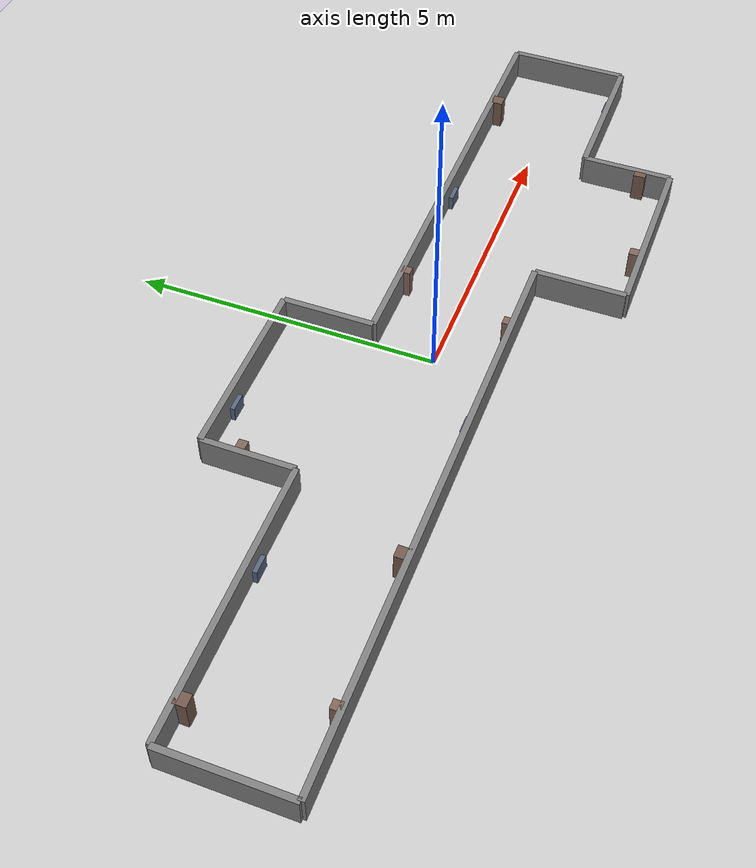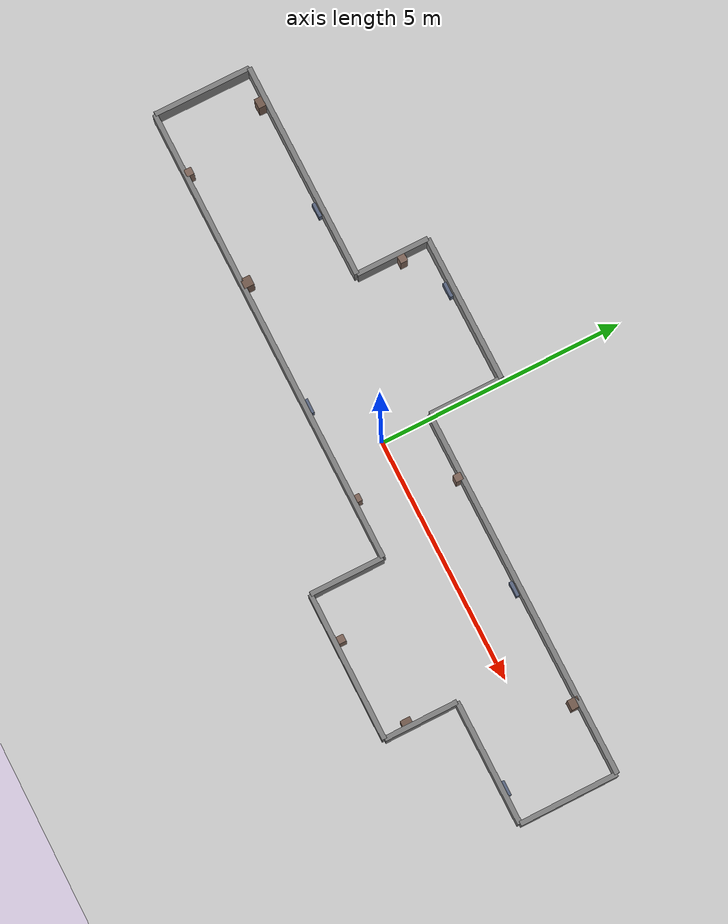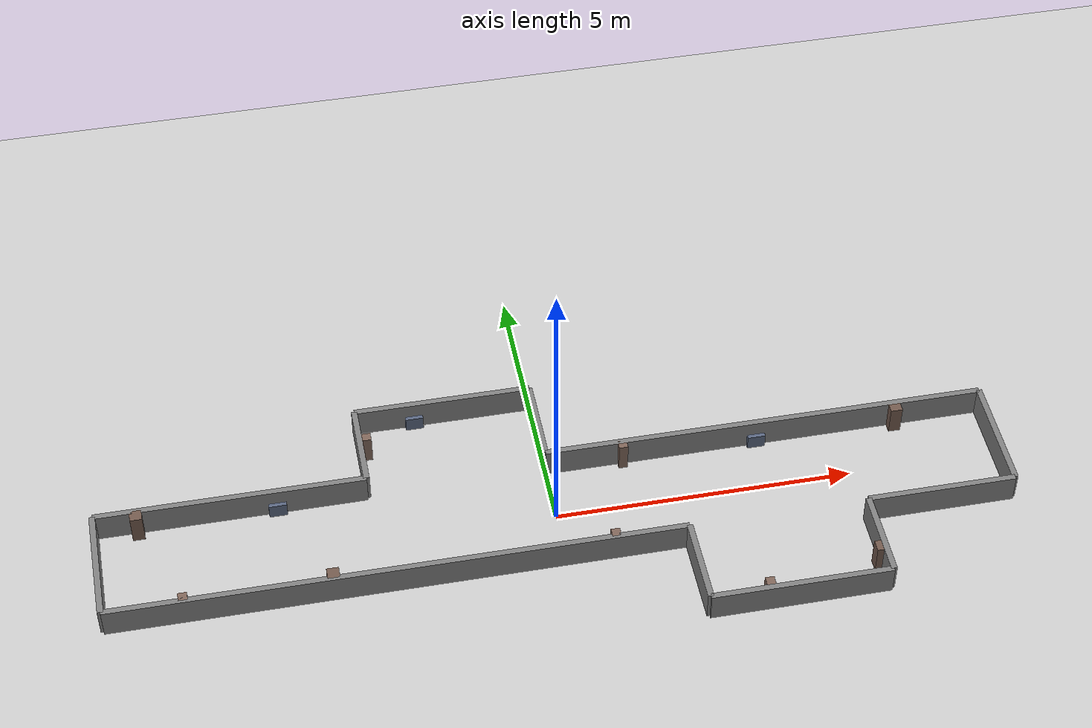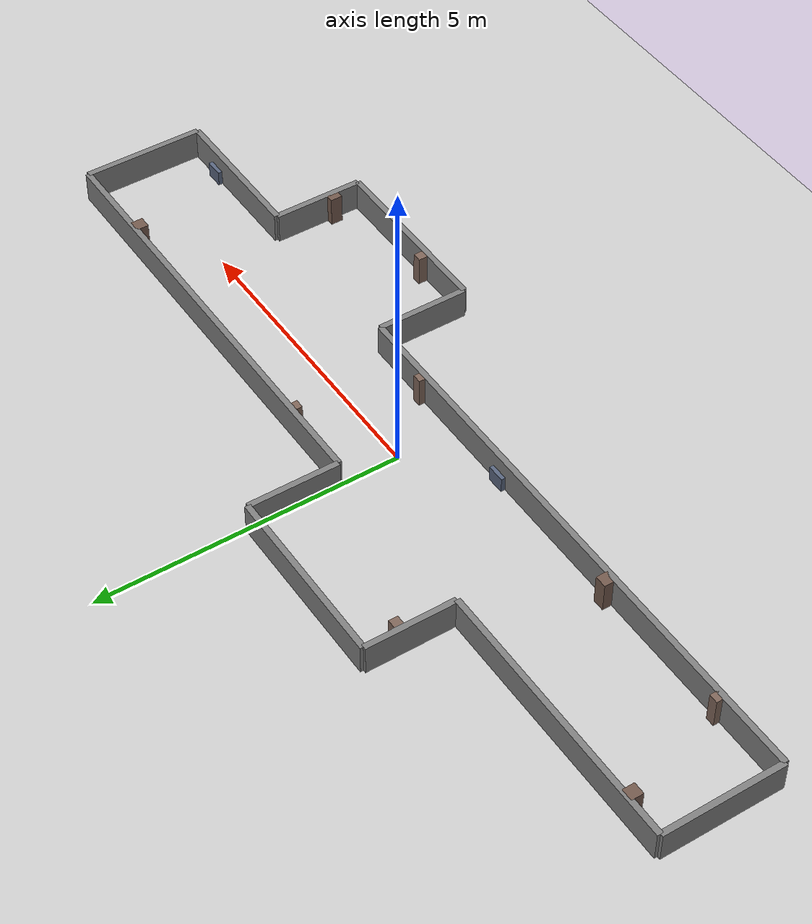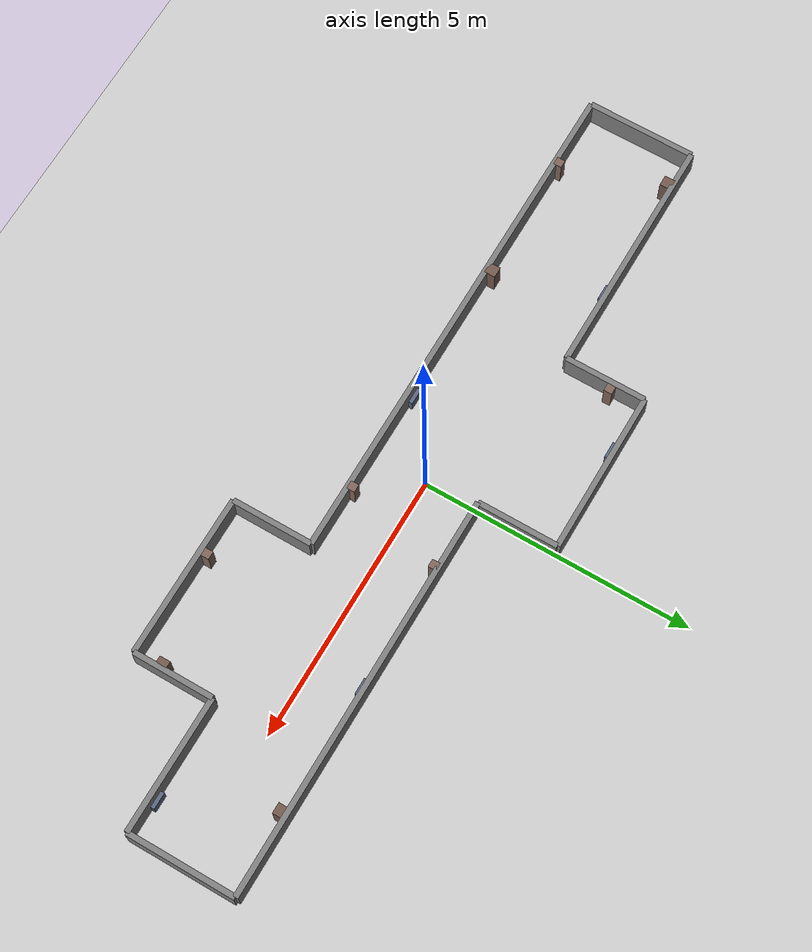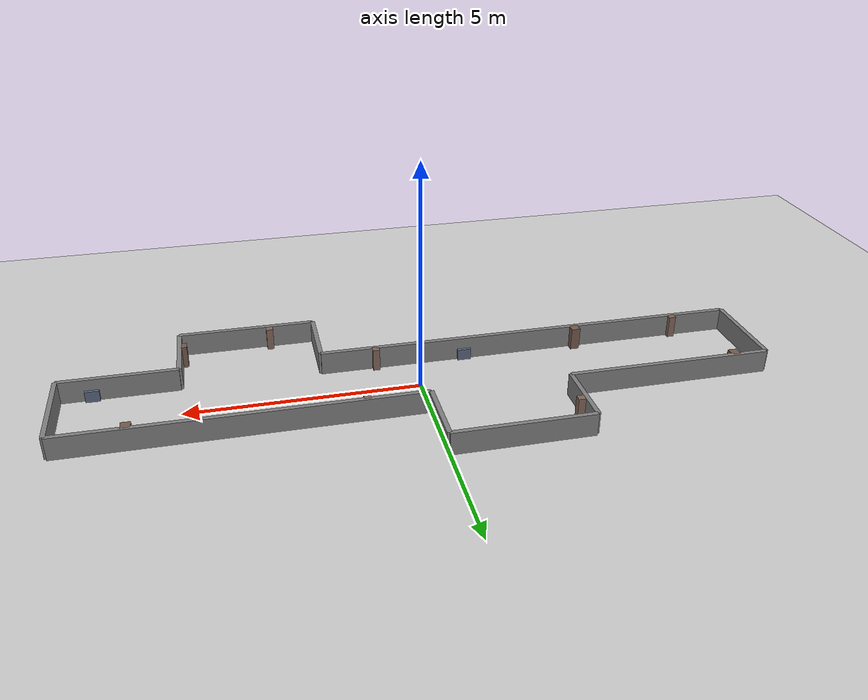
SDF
<?xml version="1.0" ?>
<sdf version="1.6">
  <world name="default">
    <plugin filename="libignition-gazebo-physics-system.so" name="ignition::gazebo::systems::Physics"/>
    <plugin filename="libignition-gazebo-user-commands-system.so" name="ignition::gazebo::systems::UserCommands"/>
    <plugin filename="libignition-gazebo-scene-broadcaster-system.so" name="ignition::gazebo::systems::SceneBroadcaster"/>
    <plugin filename="libignition-gazebo-imu-system.so" name="ignition::gazebo::systems::Imu"/>
    <plugin filename="libignition-gazebo-sensors-system.so" name="ignition::gazebo::systems::Sensors">
      <render_engine>ogre2</render_engine>
    </plugin>

    <light name="sun" type="directional">
      <pose>0 0 10 0 0.5 0</pose>
      <diffuse>1 1 1 1</diffuse>
      <specular>1 1 1 1</specular>
      <direction>-1 -1 -1</direction>
      <cast_shadows>true</cast_shadows>
    </light>

    <model name="ground_plane">
      <static>true</static>
      <link name="link">
        <collision name="collision">
          <geometry><plane><normal>0 0 1</normal><size>50 50</size></plane></geometry>
          <surface><friction><ode><mu>100</mu><mu2>50</mu2></ode></friction></surface>
        </collision>
        <visual name="visual">
          <geometry><plane><normal>0 0 1</normal><size>50 50</size></plane></geometry>
          <material>
            <ambient>0.8 0.8 0.8 1</ambient>
            <diffuse>0.8 0.8 0.8 1</diffuse>
            <specular>0.1 0.1 0.1 1</specular>
          </material>
        </visual>
      </link>
    </model>

    <!-- ===== CORRIDOR WALLS ===== -->
    <!--
      Layout (top-down, Y up, X right):
        Alcove 1 on south (y>1): x=-3 to 0, back at y=2.5
        Alcove 2 on north (y<-1): x=2 to 5, back at y=-2.5
    -->

    <!-- South wall: west segment (x=-7.5 to -3, before alcove 1) -->
    <model name="wall_south_west">
      <static>true</static>
      <pose>-5.25 1.0 0.25 0 0 0</pose>
      <link name="link">
        <collision name="collision"><geometry><box><size>4.5 0.1 0.5</size></box></geometry></collision>
        <visual name="visual">
          <geometry><box><size>4.5 0.1 0.5</size></box></geometry>
          <material><ambient>0.3 0.3 0.3 1</ambient><diffuse>0.5 0.5 0.5 1</diffuse><specular>0.1 0.1 0.1 1</specular></material>
        </visual>
      </link>
    </model>

    <!-- South wall: east segment (x=0 to 7.5, after alcove 1) -->
    <model name="wall_south_east">
      <static>true</static>
      <pose>3.75 1.0 0.25 0 0 0</pose>
      <link name="link">
        <collision name="collision"><geometry><box><size>7.5 0.1 0.5</size></box></geometry></collision>
        <visual name="visual">
          <geometry><box><size>7.5 0.1 0.5</size></box></geometry>
          <material><ambient>0.3 0.3 0.3 1</ambient><diffuse>0.5 0.5 0.5 1</diffuse><specular>0.1 0.1 0.1 1</specular></material>
        </visual>
      </link>
    </model>

    <!-- North wall: west segment (x=-7.5 to 2, before alcove 2) -->
    <model name="wall_north_west">
      <static>true</static>
      <pose>-2.75 -1.0 0.25 0 0 0</pose>
      <link name="link">
        <collision name="collision"><geometry><box><size>9.5 0.1 0.5</size></box></geometry></collision>
        <visual name="visual">
          <geometry><box><size>9.5 0.1 0.5</size></box></geometry>
          <material><ambient>0.3 0.3 0.3 1</ambient><diffuse>0.5 0.5 0.5 1</diffuse><specular>0.1 0.1 0.1 1</specular></material>
        </visual>
      </link>
    </model>

    <!-- North wall: east segment (x=5 to 7.5, after alcove 2) -->
    <model name="wall_north_east">
      <static>true</static>
      <pose>6.25 -1.0 0.25 0 0 0</pose>
      <link name="link">
        <collision name="collision"><geometry><box><size>2.5 0.1 0.5</size></box></geometry></collision>
        <visual name="visual">
          <geometry><box><size>2.5 0.1 0.5</size></box></geometry>
          <material><ambient>0.3 0.3 0.3 1</ambient><diffuse>0.5 0.5 0.5 1</diffuse><specular>0.1 0.1 0.1 1</specular></material>
        </visual>
      </link>
    </model>

    <!-- Alcove 1 (south): back wall (y=2.5) and side walls -->
    <model name="alcove1_back">
      <static>true</static>
      <pose>-1.5 2.5 0.25 0 0 0</pose>
      <link name="link">
        <collision name="collision"><geometry><box><size>3 0.1 0.5</size></box></geometry></collision>
        <visual name="visual">
          <geometry><box><size>3 0.1 0.5</size></box></geometry>
          <material><ambient>0.3 0.3 0.3 1</ambient><diffuse>0.5 0.5 0.5 1</diffuse><specular>0.1 0.1 0.1 1</specular></material>
        </visual>
      </link>
    </model>
    <model name="alcove1_side_west">
      <static>true</static>
      <pose>-3 1.75 0.25 0 0 0</pose>
      <link name="link">
        <collision name="collision"><geometry><box><size>0.1 1.5 0.5</size></box></geometry></collision>
        <visual name="visual">
          <geometry><box><size>0.1 1.5 0.5</size></box></geometry>
          <material><ambient>0.3 0.3 0.3 1</ambient><diffuse>0.5 0.5 0.5 1</diffuse><specular>0.1 0.1 0.1 1</specular></material>
        </visual>
      </link>
    </model>
    <model name="alcove1_side_east">
      <static>true</static>
      <pose>0 1.75 0.25 0 0 0</pose>
      <link name="link">
        <collision name="collision"><geometry><box><size>0.1 1.5 0.5</size></box></geometry></collision>
        <visual name="visual">
          <geometry><box><size>0.1 1.5 0.5</size></box></geometry>
          <material><ambient>0.3 0.3 0.3 1</ambient><diffuse>0.5 0.5 0.5 1</diffuse><specular>0.1 0.1 0.1 1</specular></material>
        </visual>
      </link>
    </model>

    <!-- Alcove 2 (north): back wall (y=-2.5) and side walls -->
    <model name="alcove2_back">
      <static>true</static>
      <pose>3.5 -2.5 0.25 0 0 0</pose>
      <link name="link">
        <collision name="collision"><geometry><box><size>3 0.1 0.5</size></box></geometry></collision>
        <visual name="visual">
          <geometry><box><size>3 0.1 0.5</size></box></geometry>
          <material><ambient>0.3 0.3 0.3 1</ambient><diffuse>0.5 0.5 0.5 1</diffuse><specular>0.1 0.1 0.1 1</specular></material>
        </visual>
      </link>
    </model>
    <model name="alcove2_side_west">
      <static>true</static>
      <pose>2 -1.75 0.25 0 0 0</pose>
      <link name="link">
        <collision name="collision"><geometry><box><size>0.1 1.5 0.5</size></box></geometry></collision>
        <visual name="visual">
          <geometry><box><size>0.1 1.5 0.5</size></box></geometry>
          <material><ambient>0.3 0.3 0.3 1</ambient><diffuse>0.5 0.5 0.5 1</diffuse><specular>0.1 0.1 0.1 1</specular></material>
        </visual>
      </link>
    </model>
    <model name="alcove2_side_east">
      <static>true</static>
      <pose>5 -1.75 0.25 0 0 0</pose>
      <link name="link">
        <collision name="collision"><geometry><box><size>0.1 1.5 0.5</size></box></geometry></collision>
        <visual name="visual">
          <geometry><box><size>0.1 1.5 0.5</size></box></geometry>
          <material><ambient>0.3 0.3 0.3 1</ambient><diffuse>0.5 0.5 0.5 1</diffuse><specular>0.1 0.1 0.1 1</specular></material>
        </visual>
      </link>
    </model>

    <!-- West end wall -->
    <model name="wall_west">
      <static>true</static>
      <pose>-7.5 0 0.25 0 0 0</pose>
      <link name="link">
        <collision name="collision"><geometry><box><size>0.1 2.0 0.5</size></box></geometry></collision>
        <visual name="visual">
          <geometry><box><size>0.1 2.0 0.5</size></box></geometry>
          <material><ambient>0.3 0.3 0.3 1</ambient><diffuse>0.5 0.5 0.5 1</diffuse><specular>0.1 0.1 0.1 1</specular></material>
        </visual>
      </link>
    </model>

    <!-- East end wall -->
    <model name="wall_east">
      <static>true</static>
      <pose>7.5 0 0.25 0 0 0</pose>
      <link name="link">
        <collision name="collision"><geometry><box><size>0.1 2.0 0.5</size></box></geometry></collision>
        <visual name="visual">
          <geometry><box><size>0.1 2.0 0.5</size></box></geometry>
          <material><ambient>0.3 0.3 0.3 1</ambient><diffuse>0.5 0.5 0.5 1</diffuse><specular>0.1 0.1 0.1 1</specular></material>
        </visual>
      </link>
    </model>

    <!-- ===== FEATURES ===== -->

    <!-- SOUTH WALL WEST (x=-7.5 to -3): large-pillar, cabinet -->
    <model name="feat_1">
      <static>true</static>
      <pose>-6.8 0.90 0.25 0 0 0</pose>
      <link name="link">
        <collision name="collision"><geometry><box><size>0.20 0.20 0.5</size></box></geometry></collision>
        <visual name="visual">
          <geometry><box><size>0.20 0.20 0.5</size></box></geometry>
          <material><ambient>0.35 0.25 0.20 1</ambient><diffuse>0.45 0.35 0.30 1</diffuse></material>
        </visual>
      </link>
    </model>
    <model name="feat_2">
      <static>true</static>
      <pose>-4.5 0.94 0.125 0 0 0</pose>
      <link name="link">
        <collision name="collision"><geometry><box><size>0.3 0.12 0.25</size></box></geometry></collision>
        <visual name="visual">
          <geometry><box><size>0.3 0.12 0.25</size></box></geometry>
          <material><ambient>0.25 0.3 0.4 1</ambient><diffuse>0.35 0.4 0.5 1</diffuse></material>
        </visual>
      </link>
    </model>

    <!-- NORTH WALL WEST (x=-7.5 to 2): pillar, large-pillar, cabinet -->
    <model name="feat_3">
      <static>true</static>
      <pose>-6.2 -0.925 0.25 0 0 0</pose>
      <link name="link">
        <collision name="collision"><geometry><box><size>0.15 0.15 0.5</size></box></geometry></collision>
        <visual name="visual">
          <geometry><box><size>0.15 0.15 0.5</size></box></geometry>
          <material><ambient>0.4 0.3 0.25 1</ambient><diffuse>0.5 0.4 0.35 1</diffuse></material>
        </visual>
      </link>
    </model>
    <model name="feat_4">
      <static>true</static>
      <pose>-3.8 -0.90 0.25 0 0 0</pose>
      <link name="link">
        <collision name="collision"><geometry><box><size>0.20 0.20 0.5</size></box></geometry></collision>
        <visual name="visual">
          <geometry><box><size>0.20 0.20 0.5</size></box></geometry>
          <material><ambient>0.35 0.25 0.20 1</ambient><diffuse>0.45 0.35 0.30 1</diffuse></material>
        </visual>
      </link>
    </model>
    <model name="feat_5">
      <static>true</static>
      <pose>-1.2 -0.94 0.125 0 0 0</pose>
      <link name="link">
        <collision name="collision"><geometry><box><size>0.3 0.12 0.25</size></box></geometry></collision>
        <visual name="visual">
          <geometry><box><size>0.3 0.12 0.25</size></box></geometry>
          <material><ambient>0.25 0.3 0.4 1</ambient><diffuse>0.35 0.4 0.5 1</diffuse></material>
        </visual>
      </link>
    </model>
    <model name="feat_6">
      <static>true</static>
      <pose>0.8 -0.925 0.25 0 0 0</pose>
      <link name="link">
        <collision name="collision"><geometry><box><size>0.15 0.15 0.5</size></box></geometry></collision>
        <visual name="visual">
          <geometry><box><size>0.15 0.15 0.5</size></box></geometry>
          <material><ambient>0.4 0.3 0.25 1</ambient><diffuse>0.5 0.4 0.35 1</diffuse></material>
        </visual>
      </link>
    </model>

    <!-- ALCOVE 1 INTERIOR (south alcove): pillar on west side wall -->
    <model name="feat_7">
      <static>true</static>
      <pose>-2.875 1.9 0.25 0 0 0</pose>
      <link name="link">
        <collision name="collision"><geometry><box><size>0.15 0.15 0.5</size></box></geometry></collision>
        <visual name="visual">
          <geometry><box><size>0.15 0.15 0.5</size></box></geometry>
          <material><ambient>0.4 0.3 0.25 1</ambient><diffuse>0.5 0.4 0.35 1</diffuse></material>
        </visual>
      </link>
    </model>
    <!-- cabinet on back wall -->
    <model name="feat_8">
      <static>true</static>
      <pose>-2.0 2.44 0.125 0 0 0</pose>
      <link name="link">
        <collision name="collision"><geometry><box><size>0.3 0.12 0.25</size></box></geometry></collision>
        <visual name="visual">
          <geometry><box><size>0.3 0.12 0.25</size></box></geometry>
          <material><ambient>0.25 0.3 0.4 1</ambient><diffuse>0.35 0.4 0.5 1</diffuse></material>
        </visual>
      </link>
    </model>

    <!-- SOUTH WALL EAST (x=0 to 7.5): pillar, cabinet, large-pillar -->
    <model name="feat_9">
      <static>true</static>
      <pose>1.3 0.925 0.25 0 0 0</pose>
      <link name="link">
        <collision name="collision"><geometry><box><size>0.15 0.15 0.5</size></box></geometry></collision>
        <visual name="visual">
          <geometry><box><size>0.15 0.15 0.5</size></box></geometry>
          <material><ambient>0.4 0.3 0.25 1</ambient><diffuse>0.5 0.4 0.35 1</diffuse></material>
        </visual>
      </link>
    </model>
    <model name="feat_10">
      <static>true</static>
      <pose>3.6 0.94 0.125 0 0 0</pose>
      <link name="link">
        <collision name="collision"><geometry><box><size>0.3 0.12 0.25</size></box></geometry></collision>
        <visual name="visual">
          <geometry><box><size>0.3 0.12 0.25</size></box></geometry>
          <material><ambient>0.25 0.3 0.4 1</ambient><diffuse>0.35 0.4 0.5 1</diffuse></material>
        </visual>
      </link>
    </model>
    <model name="feat_11">
      <static>true</static>
      <pose>6.0 0.90 0.25 0 0 0</pose>
      <link name="link">
        <collision name="collision"><geometry><box><size>0.20 0.20 0.5</size></box></geometry></collision>
        <visual name="visual">
          <geometry><box><size>0.20 0.20 0.5</size></box></geometry>
          <material><ambient>0.35 0.25 0.20 1</ambient><diffuse>0.45 0.35 0.30 1</diffuse></material>
        </visual>
      </link>
    </model>

    <!-- ALCOVE 2 INTERIOR (north alcove): large-pillar on east side wall, pillar on back -->
    <model name="feat_12">
      <static>true</static>
      <pose>4.90 -2.0 0.25 0 0 0</pose>
      <link name="link">
        <collision name="collision"><geometry><box><size>0.12 0.20 0.5</size></box></geometry></collision>
        <visual name="visual">
          <geometry><box><size>0.12 0.20 0.5</size></box></geometry>
          <material><ambient>0.35 0.25 0.20 1</ambient><diffuse>0.45 0.35 0.30 1</diffuse></material>
        </visual>
      </link>
    </model>
    <model name="feat_13">
      <static>true</static>
      <pose>3.0 -2.375 0.25 0 0 0</pose>
      <link name="link">
        <collision name="collision"><geometry><box><size>0.15 0.15 0.5</size></box></geometry></collision>
        <visual name="visual">
          <geometry><box><size>0.15 0.15 0.5</size></box></geometry>
          <material><ambient>0.4 0.3 0.25 1</ambient><diffuse>0.5 0.4 0.35 1</diffuse></material>
        </visual>
      </link>
    </model>

    <!-- NORTH WALL EAST (x=5 to 7.5): cabinet -->
    <model name="feat_14">
      <static>true</static>
      <pose>6.8 -0.94 0.125 0 0 0</pose>
      <link name="link">
        <collision name="collision"><geometry><box><size>0.3 0.12 0.25</size></box></geometry></collision>
        <visual name="visual">
          <geometry><box><size>0.3 0.12 0.25</size></box></geometry>
          <material><ambient>0.25 0.3 0.4 1</ambient><diffuse>0.35 0.4 0.5 1</diffuse></material>
        </visual>
      </link>
    </model>
  </world>
</sdf>
